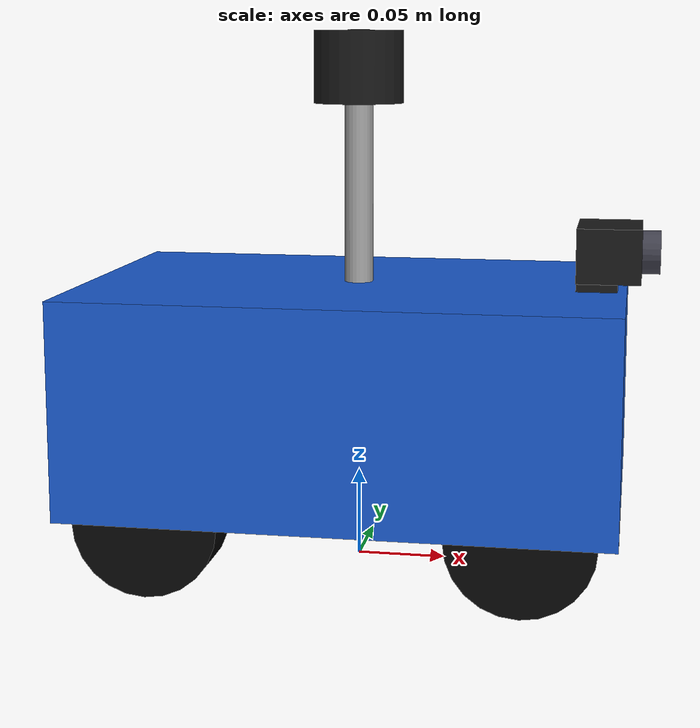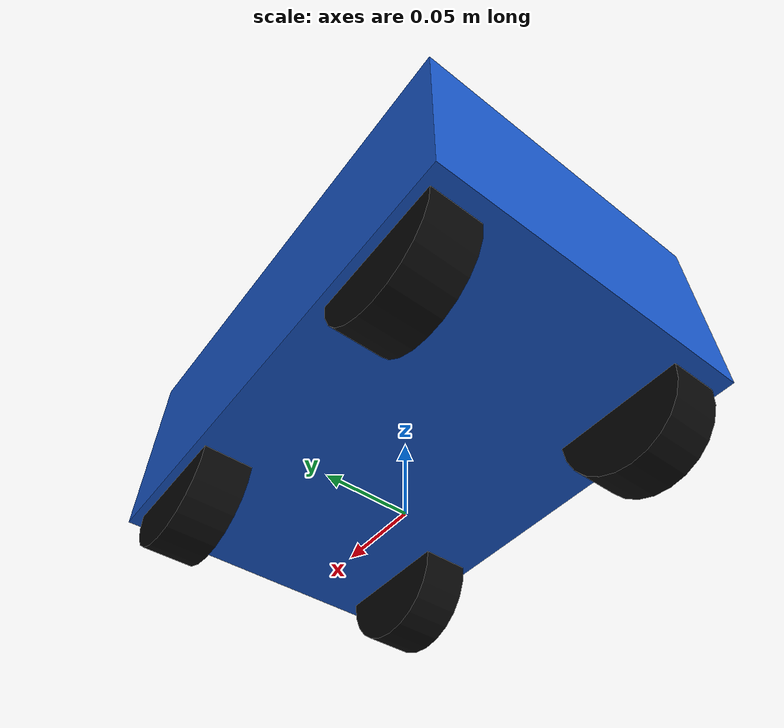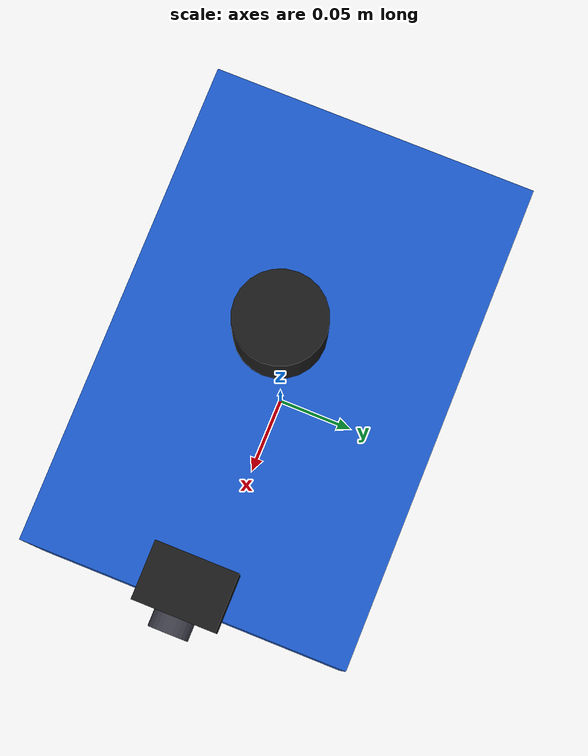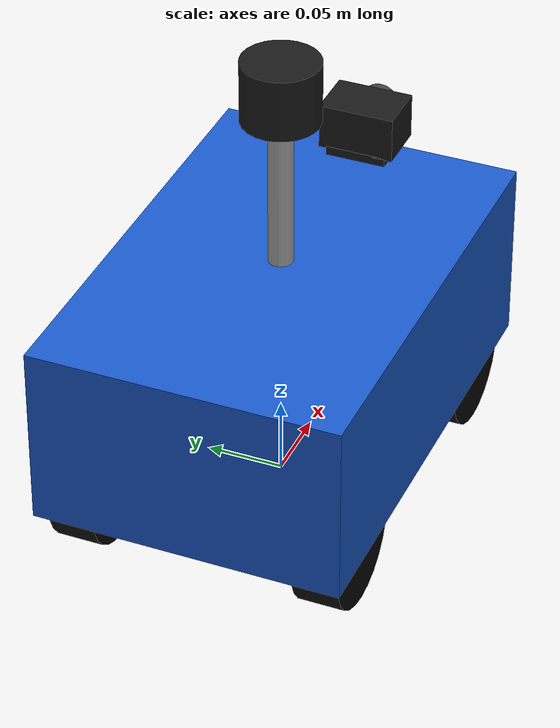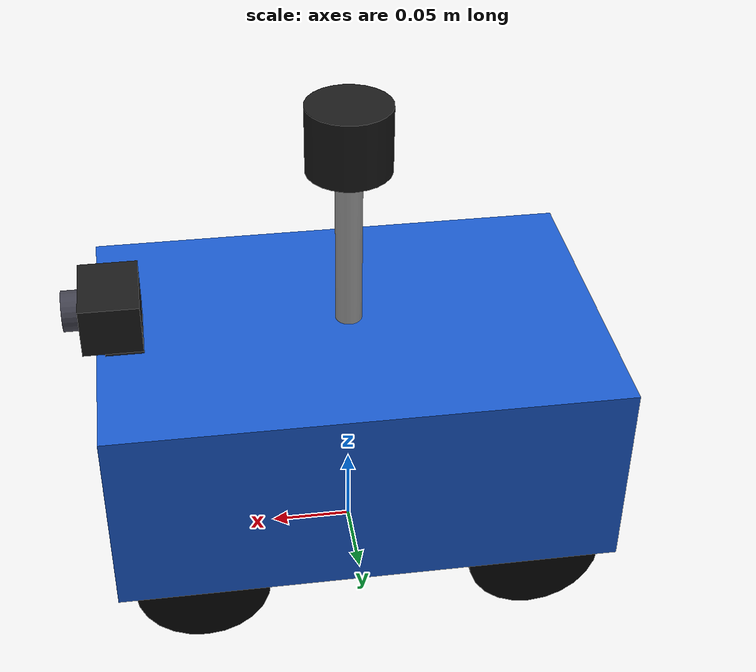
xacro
<?xml version="1.0"?>

<robot xmlns:xacro="http://www.ros.org/wiki/xacro"
       name="ee5112_ackermann_vehicle">

  <!-- EE5112 MiniLab 1.2 - Task 2                              -->
  <!-- Ackermann vehicle + RGB camera + 2D LiDAR                -->
  <!-- +x forward, +y left, +z upward                           -->
  <!-- Front-wheel steering / rear-wheel drive                  -->

  <!-- XACRO ARGUMENTS                                          -->

  <xacro:arg name="controllers_file" default=""/>
  <xacro:arg name="sensor_visuals" default="false"/>

  <!-- VEHICLE PARAMETERS                                       -->

  <xacro:property name="chassis_length" value="0.30"/>
  <xacro:property name="chassis_width"  value="0.20"/>
  <xacro:property name="chassis_height" value="0.12"/>

  <xacro:property name="wheelbase" value="0.20"/>
  <xacro:property name="track" value="0.16"/>

  <xacro:property name="wheel_radius" value="0.04"/>
  <xacro:property name="wheel_width" value="0.03"/>

  <xacro:property name="max_speed" value="0.50"/>

  <xacro:property
      name="steering_limit"
      value="${35.0 * pi / 180.0}"/>

  <!-- DERIVED GEOMETRY                                         -->

  <xacro:property
      name="base_height"
      value="${wheel_radius + chassis_height / 2.0}"/>

  <xacro:property
      name="front_x"
      value="${wheelbase / 2.0}"/>

  <xacro:property
      name="rear_x"
      value="${-wheelbase / 2.0}"/>

  <xacro:property
      name="left_y"
      value="${track / 2.0}"/>

  <xacro:property
      name="right_y"
      value="${-track / 2.0}"/>

  <xacro:property
      name="wheel_z"
      value="${-chassis_height / 2.0}"/>

  <!-- MASS PARAMETERS                                          -->

  <xacro:property name="chassis_mass" value="2.0"/>
  <xacro:property name="wheel_mass" value="0.10"/>
  <xacro:property name="knuckle_mass" value="0.05"/>

  <!-- MATERIALS                                                -->

  <material name="body_blue">
    <color rgba="0.10 0.35 0.80 1.0"/>
  </material>

  <material name="wheel_black">
    <color rgba="0.03 0.03 0.03 1.0"/>
  </material>

  <material name="steering_grey">
    <color rgba="0.65 0.65 0.65 1.0"/>
  </material>

  <material name="sensor_dark">
    <color rgba="0.10 0.10 0.10 1.0"/>
  </material>

  <material name="camera_lens_colour">
    <color rgba="0.25 0.25 0.30 1.0"/>
  </material>

  <!-- BASE FOOTPRINT                                           -->

  <link name="base_footprint"/>

  <joint name="base_footprint_joint"
         type="fixed">

    <parent link="base_footprint"/>
    <child link="base_link"/>

    <origin
        xyz="0 0 ${base_height}"
        rpy="0 0 0"/>

  </joint>

  <!-- CHASSIS                                                  -->

  <link name="base_link">

    <visual>

      <geometry>
        <box size="${chassis_length}
                   ${chassis_width}
                   ${chassis_height}"/>
      </geometry>

      <material name="body_blue"/>

    </visual>

    <collision>

      <geometry>
        <box size="${chassis_length}
                   ${chassis_width}
                   ${chassis_height}"/>
      </geometry>

    </collision>

    <inertial>

      <mass value="${chassis_mass}"/>

      <inertia
          ixx="${chassis_mass / 12.0 *
                 (chassis_width * chassis_width +
                  chassis_height * chassis_height)}"
          ixy="0.0"
          ixz="0.0"
          iyy="${chassis_mass / 12.0 *
                 (chassis_length * chassis_length +
                  chassis_height * chassis_height)}"
          iyz="0.0"
          izz="${chassis_mass / 12.0 *
                 (chassis_length * chassis_length +
                  chassis_width * chassis_width)}"/>

    </inertial>

  </link>

  <!-- FRONT WHEEL MACRO                                        -->

  <xacro:macro name="front_wheel"
               params="side x y">

    <!-- Steering knuckle -->

    <link name="front_${side}_steering_link">

      <visual>

        <origin
            xyz="0 0 0.025"
            rpy="0 0 0"/>

        <geometry>
          <box size="0.025 0.025 0.070"/>
        </geometry>

        <material name="steering_grey"/>

      </visual>

      <collision>

        <origin
            xyz="0 0 0.025"
            rpy="0 0 0"/>

        <geometry>
          <box size="0.025 0.025 0.070"/>
        </geometry>

      </collision>

      <inertial>

        <origin
            xyz="0 0 0.025"
            rpy="0 0 0"/>

        <mass value="${knuckle_mass}"/>

        <inertia
            ixx="0.00003"
            ixy="0.0"
            ixz="0.0"
            iyy="0.00003"
            iyz="0.0"
            izz="0.00001"/>

      </inertial>

    </link>

    <!-- Steering joint -->

    <joint
        name="front_${side}_steering_joint"
        type="revolute">

      <parent link="base_link"/>
      <child link="front_${side}_steering_link"/>

      <origin
          xyz="${x} ${y} ${wheel_z}"
          rpy="0 0 0"/>

      <axis xyz="0 0 1"/>

      <limit
          lower="${-steering_limit}"
          upper="${steering_limit}"
          effort="20.0"
          velocity="2.0"/>

      <dynamics
          damping="0.20"
          friction="0.05"/>

    </joint>

    <!-- Front wheel -->

    <link name="front_${side}_wheel_link">

      <visual>

        <origin
            xyz="0 0 0"
            rpy="${pi / 2.0} 0 0"/>

        <geometry>

          <cylinder
              radius="${wheel_radius}"
              length="${wheel_width}"/>

        </geometry>

        <material name="wheel_black"/>

      </visual>

      <collision>

        <origin
            xyz="0 0 0"
            rpy="${pi / 2.0} 0 0"/>

        <geometry>

          <cylinder
              radius="${wheel_radius}"
              length="${wheel_width}"/>

        </geometry>

      </collision>

      <inertial>

        <origin
            xyz="0 0 0"
            rpy="${pi / 2.0} 0 0"/>

        <mass value="${wheel_mass}"/>

        <inertia
            ixx="${wheel_mass *
                   (3.0 * wheel_radius * wheel_radius +
                    wheel_width * wheel_width) / 12.0}"
            ixy="0.0"
            ixz="0.0"
            iyy="${0.5 *
                   wheel_mass *
                   wheel_radius *
                   wheel_radius}"
            iyz="0.0"
            izz="${wheel_mass *
                   (3.0 * wheel_radius * wheel_radius +
                    wheel_width * wheel_width) / 12.0}"/>

      </inertial>

    </link>

    <!-- Free-rolling front wheel -->

    <joint
        name="front_${side}_wheel_joint"
        type="continuous">

      <parent link="front_${side}_steering_link"/>
      <child link="front_${side}_wheel_link"/>

      <origin
          xyz="0 0 0"
          rpy="0 0 0"/>

      <axis xyz="0 1 0"/>

      <dynamics
          damping="0.00"
          friction="0.00"/>

    </joint>

  </xacro:macro>

  <!-- REAR WHEEL MACRO                                         -->

  <xacro:macro name="rear_wheel"
               params="side x y">

    <link name="rear_${side}_wheel_link">

      <visual>

        <origin
            xyz="0 0 0"
            rpy="${pi / 2.0} 0 0"/>

        <geometry>

          <cylinder
              radius="${wheel_radius}"
              length="${wheel_width}"/>

        </geometry>

        <material name="wheel_black"/>

      </visual>

      <collision>

        <origin
            xyz="0 0 0"
            rpy="${pi / 2.0} 0 0"/>

        <geometry>

          <cylinder
              radius="${wheel_radius}"
              length="${wheel_width}"/>

        </geometry>

      </collision>

      <inertial>

        <origin
            xyz="0 0 0"
            rpy="${pi / 2.0} 0 0"/>

        <mass value="${wheel_mass}"/>

        <inertia
            ixx="${wheel_mass *
                   (3.0 * wheel_radius * wheel_radius +
                    wheel_width * wheel_width) / 12.0}"
            ixy="0.0"
            ixz="0.0"
            iyy="${0.5 *
                   wheel_mass *
                   wheel_radius *
                   wheel_radius}"
            iyz="0.0"
            izz="${wheel_mass *
                   (3.0 * wheel_radius * wheel_radius +
                    wheel_width * wheel_width) / 12.0}"/>

      </inertial>

    </link>

    <!-- Rear driven wheel -->

    <joint
        name="rear_${side}_wheel_joint"
        type="continuous">

      <parent link="base_link"/>
      <child link="rear_${side}_wheel_link"/>

      <origin
          xyz="${x} ${y} ${wheel_z}"
          rpy="0 0 0"/>

      <axis xyz="0 1 0"/>

      <dynamics
          damping="0.00"
          friction="0.00"/>

      <limit effort="5.0" velocity="15.0"/>

    </joint>

  </xacro:macro>

  <!-- CREATE FOUR WHEELS                                       -->

  <xacro:front_wheel
      side="left"
      x="${front_x}"
      y="${left_y}"/>

  <xacro:front_wheel
      side="right"
      x="${front_x}"
      y="${right_y}"/>

  <xacro:rear_wheel
      side="left"
      x="${rear_x}"
      y="${left_y}"/>

  <xacro:rear_wheel
      side="right"
      x="${rear_x}"
      y="${right_y}"/>

  <!-- CAMERA LINK                                              -->

  <link name="camera_link">

    <visual>

      <geometry>
        <box size="0.035 0.050 0.030"/>
      </geometry>

      <material name="sensor_dark"/>

    </visual>

    <visual>

      <origin
          xyz="0.0225 0 0"
          rpy="0 ${pi / 2.0} 0"/>

      <geometry>

        <cylinder
            radius="0.012"
            length="0.010"/>

      </geometry>

      <material name="camera_lens_colour"/>

    </visual>

    <visual>

      <origin
          xyz="-0.00625 0 -0.017"
          rpy="0 0 0"/>

      <geometry>
        <box size="0.0225 0.040 0.006"/>
      </geometry>

      <material name="sensor_dark"/>

    </visual>

    <collision>

      <geometry>
        <box size="0.035 0.050 0.030"/>
      </geometry>

    </collision>

    <collision>

      <origin
          xyz="-0.00625 0 -0.017"
          rpy="0 0 0"/>

      <geometry>
        <box size="0.0225 0.040 0.006"/>
      </geometry>

    </collision>

    <inertial>

      <mass value="0.05"/>

      <inertia
          ixx="0.00002"
          ixy="0.0"
          ixz="0.0"
          iyy="0.00002"
          iyz="0.0"
          izz="0.00002"/>

    </inertial>

  </link>

  <joint
      name="camera_joint"
      type="fixed">

    <parent link="base_link"/>
    <child link="camera_link"/>

    <origin
        xyz="0.14 0.00 0.08"
        rpy="0 0 0"/>

  </joint>

  <!-- LIDAR LINK                                               -->

  <link name="laser_link">

    <visual>

      <geometry>

        <cylinder
            radius="0.025"
            length="0.040"/>

      </geometry>

      <material name="sensor_dark"/>

    </visual>

    <visual>

      <origin
          xyz="0 0 -0.0725"
          rpy="0 0 0"/>

      <geometry>

        <cylinder
            radius="0.008"
            length="0.105"/>

      </geometry>

      <material name="steering_grey"/>

    </visual>

    <collision>

      <origin
          xyz="0 0 -0.0725"
          rpy="0 0 0"/>

      <geometry>

        <cylinder
            radius="0.008"
            length="0.105"/>

      </geometry>

    </collision>

    <collision>

      <geometry>

        <cylinder
            radius="0.025"
            length="0.040"/>

      </geometry>

    </collision>

    <inertial>

      <mass value="0.08"/>

      <inertia
          ixx="0.00003"
          ixy="0.0"
          ixz="0.0"
          iyy="0.00003"
          iyz="0.0"
          izz="0.00003"/>

    </inertial>

  </link>

  <joint
      name="laser_joint"
      type="fixed">

    <parent link="base_link"/>
    <child link="laser_link"/>

    <origin
        xyz="0.00 0.00 0.18"
        rpy="0 0 0"/>

  </joint>

  <!-- GAZEBO VISUAL MATERIALS                                  -->

  <!-- Blue chassis -->

  <gazebo reference="base_link">

    <material>Gazebo/Blue</material>

  </gazebo>

  <!-- Grey steering knuckles -->

  <gazebo reference="front_left_steering_link">

    <material>Gazebo/Grey</material>

  </gazebo>

  <gazebo reference="front_right_steering_link">

    <material>Gazebo/Grey</material>

  </gazebo>

  <!-- WHEEL MATERIALS AND CONTACT                              -->

  <gazebo reference="front_left_wheel_link">

    <material>Gazebo/FlatBlack</material>

    <mu1>1.0</mu1>
    <mu2>1.0</mu2>

    <kp>1000000.0</kp>
    <kd>1.0</kd>

  </gazebo>

  <gazebo reference="front_right_wheel_link">

    <material>Gazebo/FlatBlack</material>

    <mu1>1.0</mu1>
    <mu2>1.0</mu2>

    <kp>1000000.0</kp>
    <kd>1.0</kd>

  </gazebo>

  <gazebo reference="rear_left_wheel_link">

    <material>Gazebo/FlatBlack</material>

    <mu1>1.0</mu1>
    <mu2>1.0</mu2>

    <kp>1000000.0</kp>
    <kd>1.0</kd>

  </gazebo>

  <gazebo reference="rear_right_wheel_link">

    <material>Gazebo/FlatBlack</material>

    <mu1>1.0</mu1>
    <mu2>1.0</mu2>

    <kp>1000000.0</kp>
    <kd>1.0</kd>

  </gazebo>

  <!-- GAZEBO RGB CAMERA                                        -->

  <gazebo reference="camera_link">

    <material>Gazebo/DarkGrey</material>

    <sensor
        name="front_camera"
        type="camera">

      <always_on>true</always_on>

      <update_rate>10.0</update_rate>

      <visualize>$(arg sensor_visuals)</visualize>

      <camera name="camera">

        <horizontal_fov>1.3962634</horizontal_fov>

        <image>

          <width>640</width>

          <height>480</height>

          <format>R8G8B8</format>

        </image>

        <clip>

          <near>0.02</near>

          <far>10.0</far>

        </clip>

      </camera>

      <plugin
          name="camera_controller"
          filename="libgazebo_ros_camera.so">

        <ros>

          <namespace>/camera/color</namespace>

        </ros>

        <camera_name>camera</camera_name>

        <frame_name>camera_link</frame_name>

      </plugin>

    </sensor>

  </gazebo>

  <!-- GAZEBO 2D LIDAR                                          -->

  <gazebo reference="laser_link">

    <material>Gazebo/DarkGrey</material>

    <sensor
        name="lidar"
        type="ray">

      <always_on>true</always_on>

      <update_rate>10.0</update_rate>

      <!-- Keep LiDAR rays visible -->

      <visualize>$(arg sensor_visuals)</visualize>

      <pose>0 0 0 0 0 0</pose>

      <ray>

        <scan>

          <horizontal>

            <samples>360</samples>

            <resolution>1.0</resolution>

            <min_angle>-3.14159265359</min_angle>

            <max_angle>3.14159265359</max_angle>

          </horizontal>

        </scan>

        <range>

          <min>0.05</min>

          <max>8.0</max>

          <resolution>0.01</resolution>

        </range>

        <noise>

          <type>gaussian</type>

          <mean>0.0</mean>

          <stddev>0.005</stddev>

        </noise>

      </ray>

      <plugin
          name="laser_controller"
          filename="libgazebo_ros_ray_sensor.so">

        <ros>

          <namespace>/</namespace>

          <remapping>~/out:=scan</remapping>

        </ros>

        <output_type>sensor_msgs/LaserScan</output_type>

        <frame_name>laser_link</frame_name>

      </plugin>

    </sensor>

  </gazebo>

  <!-- ROS 2 CONTROL                                            -->

  <ros2_control
      name="GazeboSystem"
      type="system">

    <hardware>

      <plugin>gazebo_ros2_control/GazeboSystem</plugin>

    </hardware>

    <!-- Front-left steering -->

    <joint name="front_left_steering_joint">

      <command_interface name="position">

        <param name="min">${-steering_limit}</param>

        <param name="max">${steering_limit}</param>

      </command_interface>

      <state_interface name="position"/>

      <state_interface name="velocity"/>

    </joint>

    <!-- Front-right steering -->

    <joint name="front_right_steering_joint">

      <command_interface name="position">

        <param name="min">${-steering_limit}</param>

        <param name="max">${steering_limit}</param>

      </command_interface>

      <state_interface name="position"/>

      <state_interface name="velocity"/>

    </joint>

    <!-- Rear-left drive -->

    <joint name="rear_left_wheel_joint">

      <command_interface name="velocity"/>

      <state_interface name="position"/>

      <state_interface name="velocity"/>

    </joint>

    <!-- Rear-right drive -->

    <joint name="rear_right_wheel_joint">

      <command_interface name="velocity"/>

      <state_interface name="position"/>

      <state_interface name="velocity"/>

    </joint>

    <!-- Front-left free rolling -->

    <joint name="front_left_wheel_joint">

      <state_interface name="position"/>

      <state_interface name="velocity"/>

    </joint>

    <!-- Front-right free rolling -->

    <joint name="front_right_wheel_joint">

      <state_interface name="position"/>

      <state_interface name="velocity"/>

    </joint>

  </ros2_control>

  <!-- GAZEBO ROS2 CONTROL                                      -->

  <gazebo>

    <plugin
        name="gazebo_ros2_control"
        filename="libgazebo_ros2_control.so">

      <parameters>$(arg controllers_file)</parameters>

    </plugin>

  </gazebo>

  <!-- GAZEBO GROUND-TRUTH ODOMETRY                             -->

  <gazebo>

    <plugin
        name="ground_truth_odometry"
        filename="libgazebo_ros_p3d.so">

      <ros>

        <namespace>/</namespace>

        <!--
             The P3D plugin internally publishes "odom".
             Explicitly remap it to /odom.
        -->

        <remapping>odom:=odom</remapping>

      </ros>

      <!--
           Track the Gazebo physics root.

           Do NOT change this back to base_link unless
           base_link is explicitly preserved in the generated
           Gazebo SDF.
      -->

      <body_name>base_footprint</body_name>

      <!-- World-coordinate ground truth -->

      <frame_name>world</frame_name>

      <!-- 50 Hz trajectory sampling -->

      <update_rate>50.0</update_rate>

      <!-- No artificial pose offsets -->

      <xyz_offset>0 0 0</xyz_offset>

      <rpy_offset>0 0 0</rpy_offset>

      <!-- Ground truth: no measurement noise -->

      <gaussian_noise>0.0</gaussian_noise>

    </plugin>

  </gazebo>

</robot>
